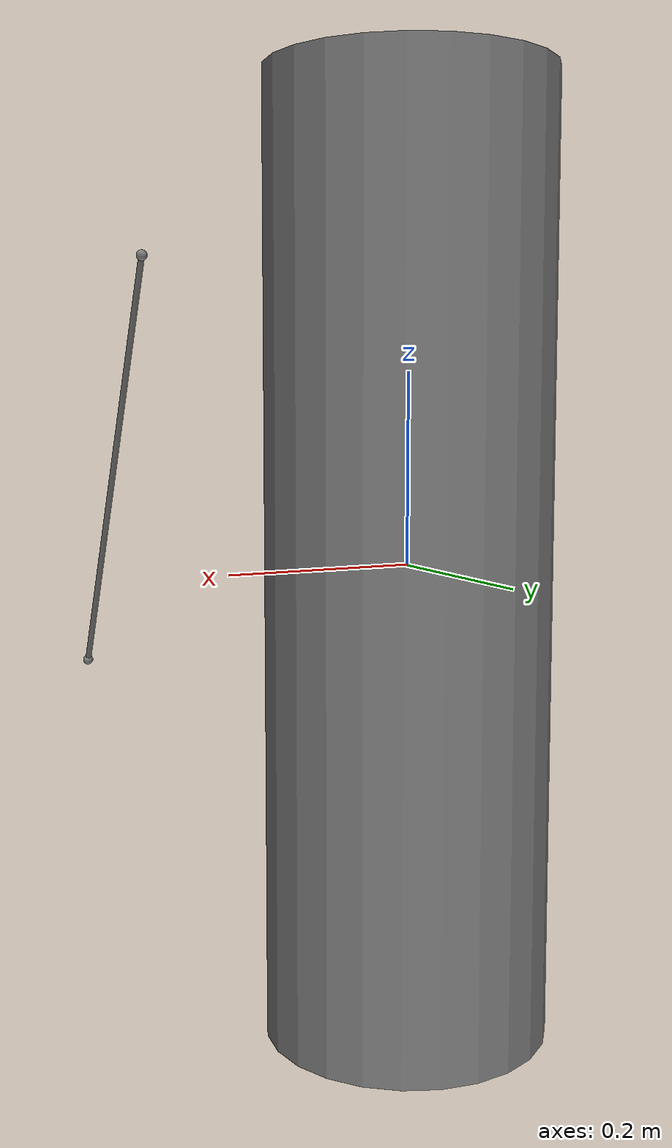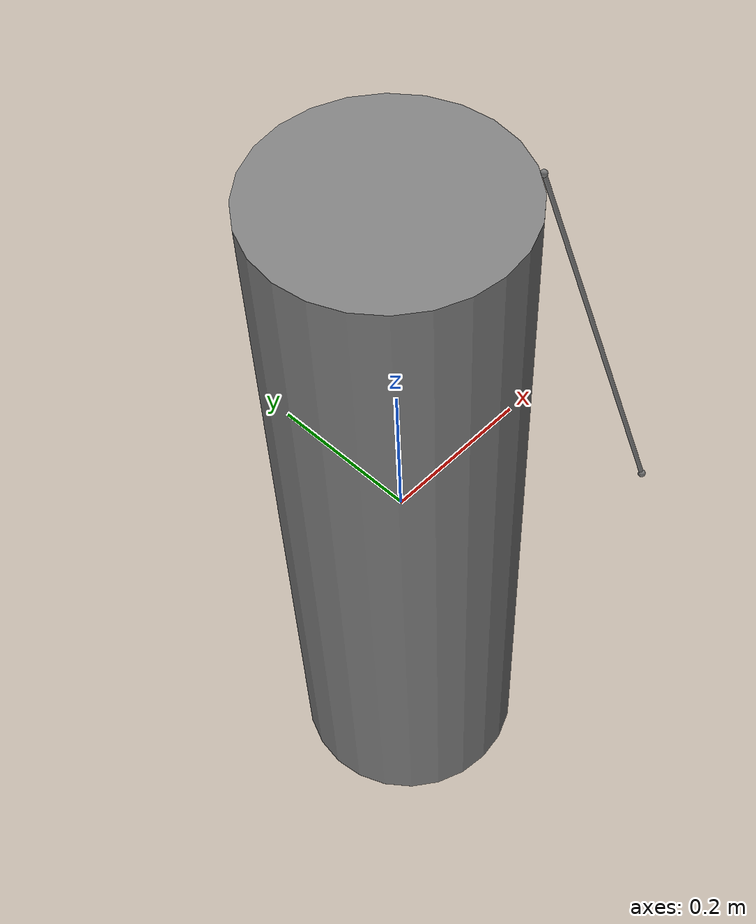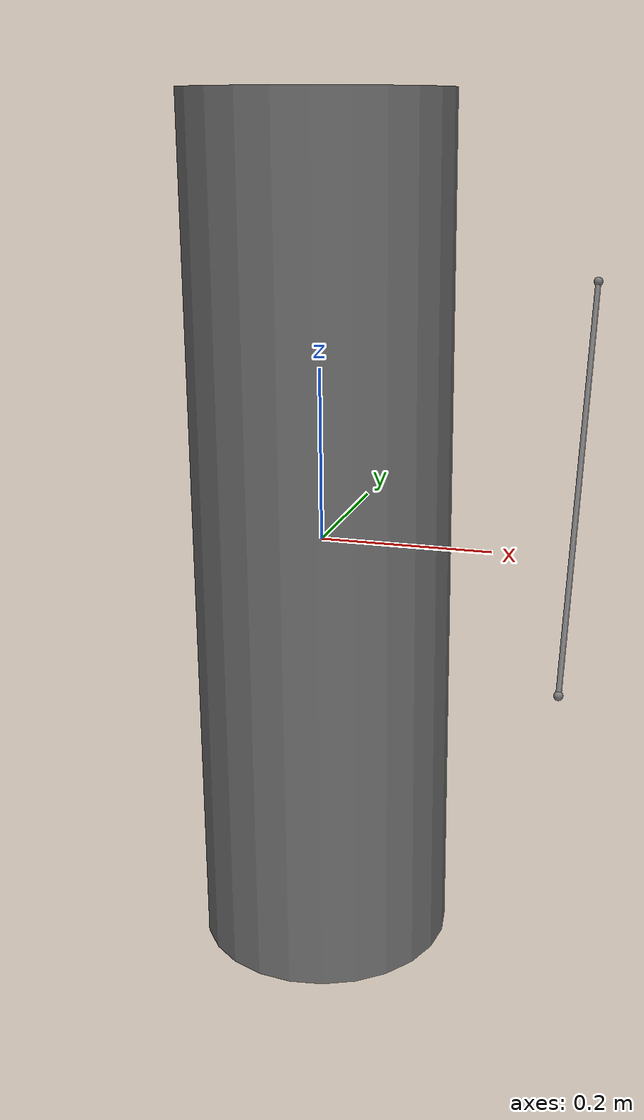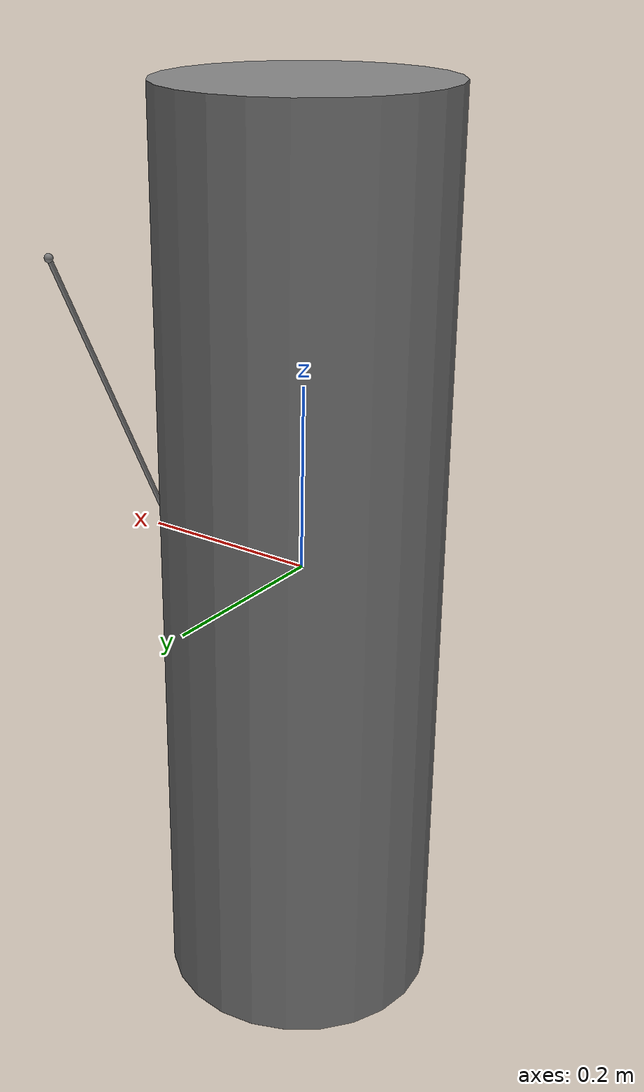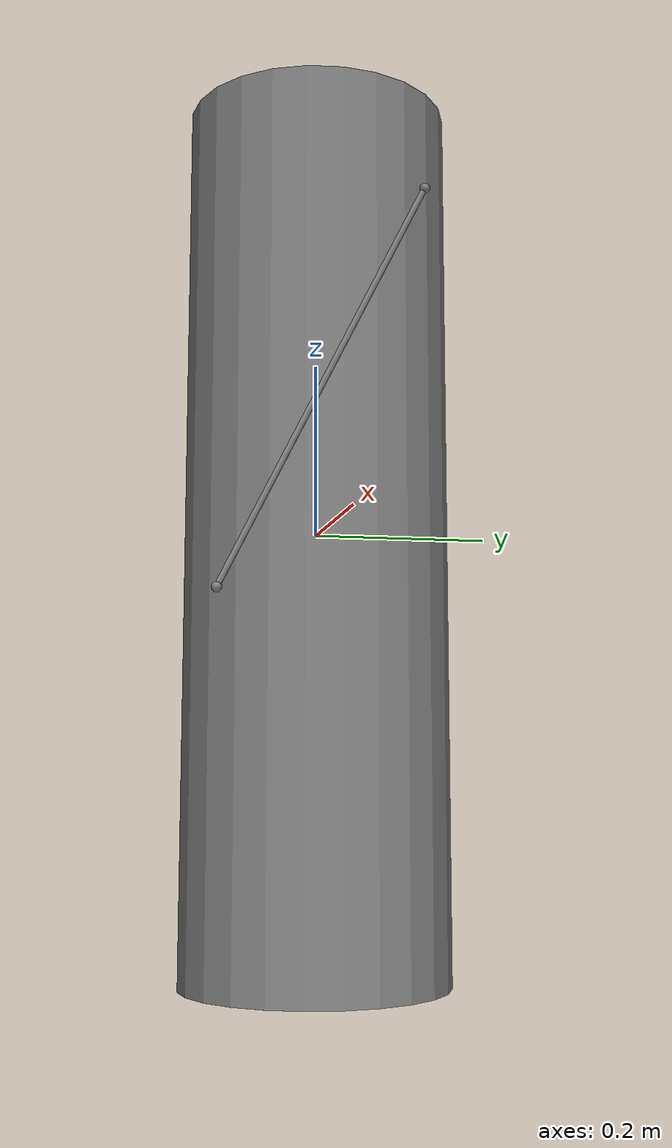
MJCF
<mujoco>
  <worldbody>
    <body name="b0">
      <geom name="wrap_cyl_z" type="cylinder" size="0.15 0.5"/>
      <site name="s1_z" pos="0.3 0.05 0.3"/>
      <site name="side_z" pos="0.05 0 0"/>
      <body name="b1">
        <joint name="j1" type="hinge" axis="0 0 1"/>
        <geom type="sphere" size="0.01" mass="0.1"/>
        <site name="s2_z" pos="0.3 -0.15 -0.1"/>
      </body>
    </body>
  </worldbody>
  <tendon>
    <spatial name="t_z_interp">
      <site site="s1_z"/>
      <geom geom="wrap_cyl_z" sidesite="side_z"/>
      <site site="s2_z"/>
    </spatial>
  </tendon>
</mujoco>
